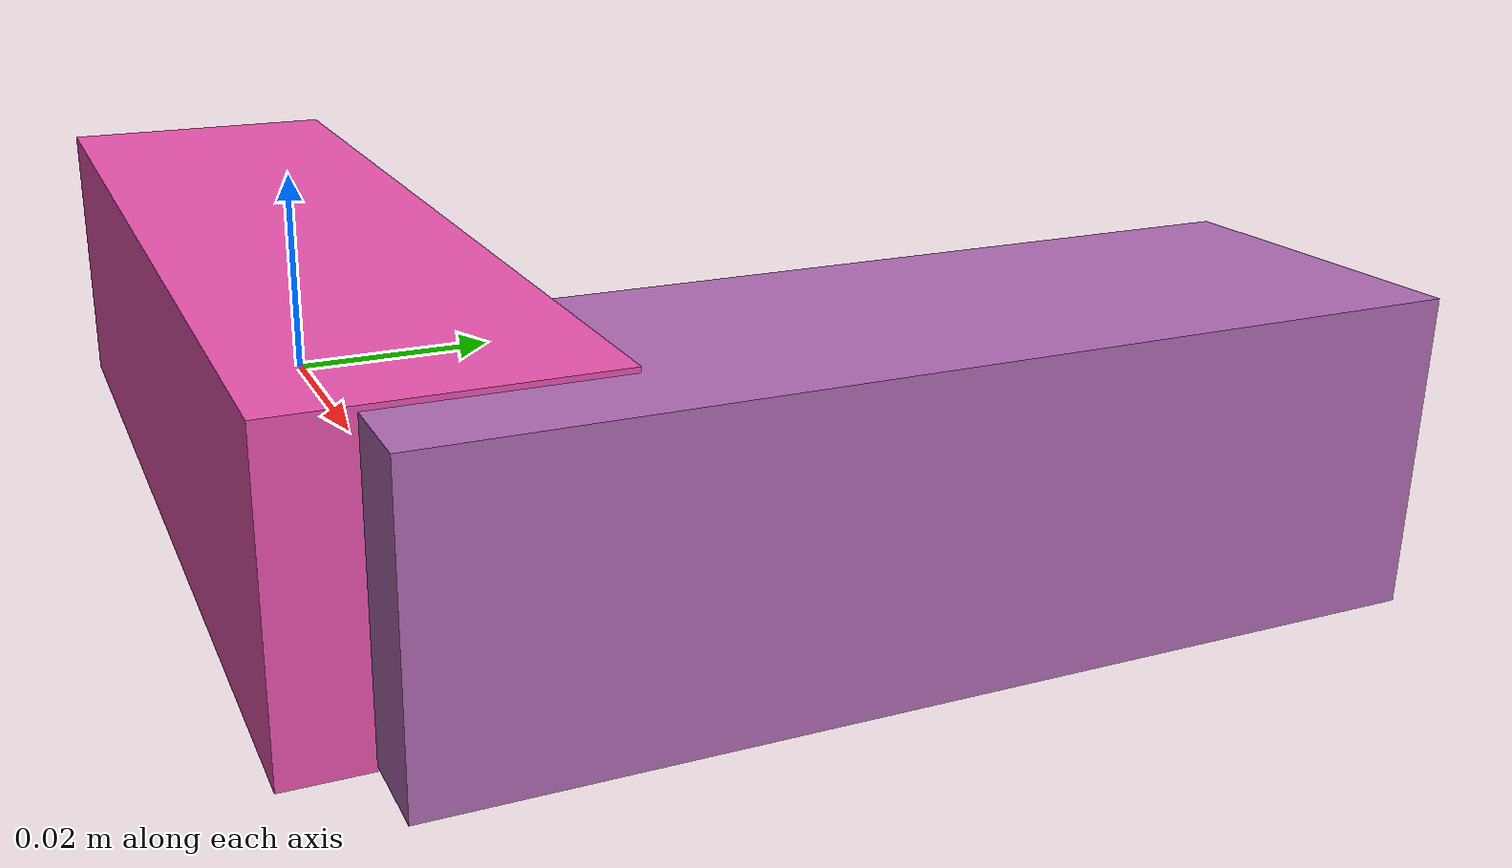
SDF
<sdf version="1.4"><world name="default"><model name="object0"><link name="link1"><pose>0 0 0 0 0 0</pose><inertial><pose>0 0 0 0 0 0</pose><mass>0.05860478432087997</mass><inertia><ixx>8.790717648131995e-06</ixx><ixy>0</ixy><iyy>6.191689160976284e-05</iyy><ixz>0</ixz><iyz>0</iyz><izz>6.191689160976284e-05</izz></inertia></inertial><visual name="link1_visual"><pose>0 0  0 0 0 0</pose><geometry><box><size>0.10852737837199995 0.03 0.03</size></box></geometry><material><diffuse>0.9255664042006058 0.3307836322155327 0.6930800104903257 1</diffuse></material></visual><collision><pose>0 0  0 0 0 0</pose><geometry><box><size>0.10852737837199995 0.03 0.03</size></box></geometry></collision></link><link name="link2"><pose>0.048034158947617346 0.03976447126781344 0 0 0 0</pose><inertial><pose>0 0 0 0 0 0</pose><mass>0.05054473513661536</mass><inertia><ixx>4.044511718986345e-05</ixx><ixy>0</ixy><iyy>7.333198656070611e-06</iyy><ixz>0</ixz><iyz>0</iyz><izz>4.069362880428514e-05</izz></inertia></inertial><visual name="link2_visual"><pose>0 0  0 0 0 0</pose><geometry><box><size>0.03 0.09360136136410252 0.028999999999999998</size></box></geometry><material><diffuse>0.6928318108142131 0.41849815699042 0.7033526484296355 1</diffuse></material></visual><collision><pose>0 0  0 0 0 0</pose><geometry><box><size>0.03 0.09360136136410252 0.028999999999999998</size></box></geometry></collision></link><joint name="link_joint_0" type="fixed"><parent>link1</parent><child>link2</child><pose>0 0 0 0 0 0</pose><axis><xyz>0 0 1</xyz></axis></joint></model></world></sdf>
